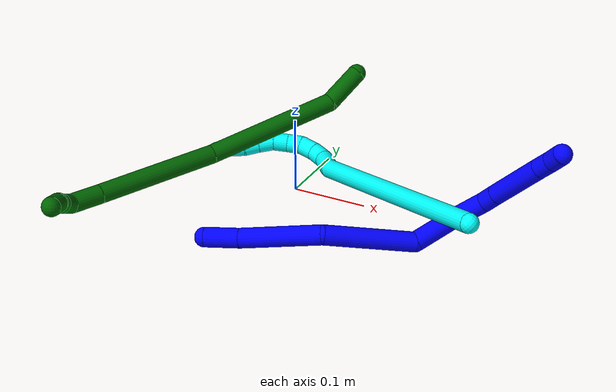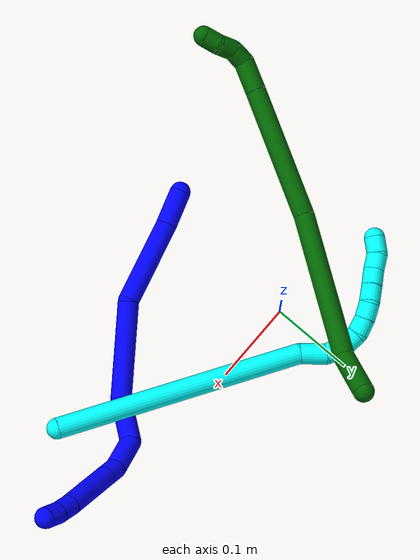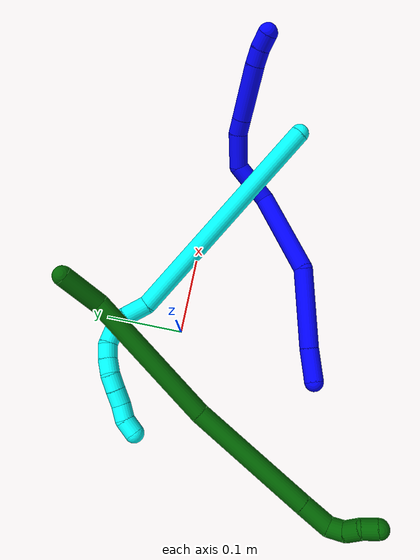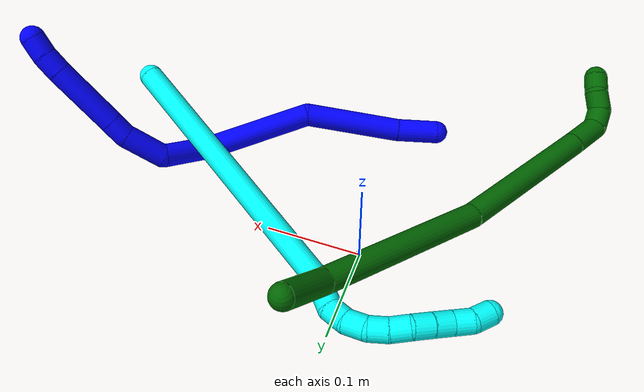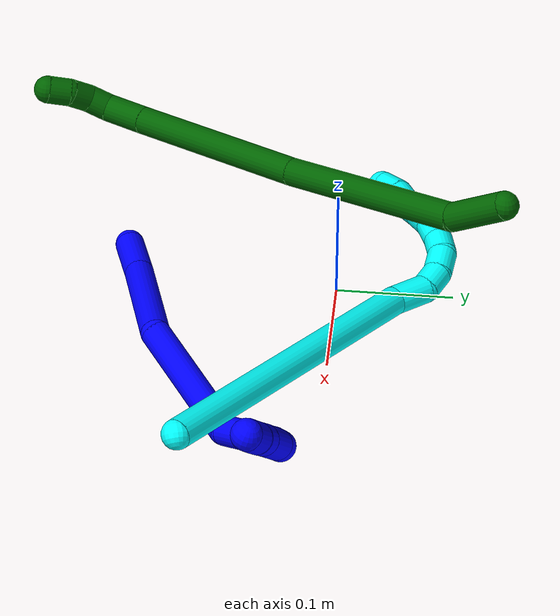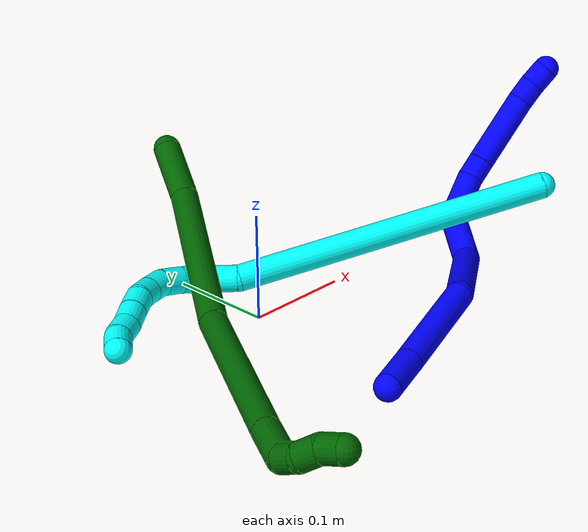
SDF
<sdf version="1.7">
 <world name="default">
  <model name="photoneo_s_sensor">
   <static>1</static>
   <pose>0 0 2 1.57079 1.57079 3.14159</pose>
   <link name="link">
    <inertial><mass>0.1</mass></inertial>
    <sensor name="sensor" type="depth">
     <update_rate>30</update_rate>
     <camera>
      <horizontal_fov>1.22</horizontal_fov>
      <image><width>1920</width><height>1200</height><format>B8G8R8</format></image>
      <clip><near>0.1</near><far>4</far></clip>
      <depth_camera><output>points</output></depth_camera>
     </camera>
     <plugin name="camera_plugin" filename="libgazebo_ros_depth_camera.so">
      <baseline>0.2</baseline>
      <alwaysOn>1</alwaysOn>
      <updateRate>0.0</updateRate>
      <cameraName>camera_ir</cameraName>
      <imageTopicName>/camera/color/image_raw</imageTopicName>
      <cameraInfoTopicName>/camera/color/camera_info</cameraInfoTopicName>
      <depthImageTopicName>/camera/depth/image_raw</depthImageTopicName>
      <depthImageCameraInfoTopicName>/camera/depth/camera_info</depthImageCameraInfoTopicName>
      <pointCloudTopicName>/camera/depth/points</pointCloudTopicName>
      <frameName>fr_optical</frameName>
      <pointCloudCutoff>0.1</pointCloudCutoff>
      <pointCloudCutoffMax>2.0</pointCloudCutoffMax>
      <distortionK1>0</distortionK1>
      <distortionK2>0</distortionK2>
      <distortionK3>0</distortionK3>
      <distortionT1>0</distortionT1>
      <distortionT2>0</distortionT2>
      <CxPrime>0</CxPrime>
      <Cx>0</Cx>
      <Cy>0</Cy>
      <focalLength>0</focalLength>
      <hackBaseline>0</hackBaseline>
     </plugin>
    </sensor>
   </link>
  </model>
  <model name="bin">
   <static>1</static>
   <link name="bottom">
    <collision name="collision-bottom">
     <pose>0 0 -0.01 0 -0 0</pose>
     <geometry><box><size>0.8 0.6 0.02</size></box></geometry>
     <surface>
      <friction><ode><mu>100</mu><mu2>100</mu2></ode></friction>
      <contact><collide_bitmask>65535</collide_bitmask></contact>
     </surface>
    </collision>
   </link>
   <link name="west_wall">
    <collision name="collision-west_wall">
     <pose>-0.41 0 0.1 0 -0 0</pose>
     <geometry><box><size>0.02 0.6 0.2</size></box></geometry>
     <surface>
      <friction><ode><mu>100</mu><mu2>100</mu2></ode></friction>
      <contact><collide_bitmask>65535</collide_bitmask></contact>
     </surface>
    </collision>
   </link>
   <link name="east_wall">
    <collision name="collision-east_wall">
     <pose>0.41 0 0.1 0 -0 0</pose>
     <geometry><box><size>0.02 0.6 0.2</size></box></geometry>
     <surface>
      <friction><ode><mu>100</mu><mu2>100</mu2></ode></friction>
      <contact><collide_bitmask>65535</collide_bitmask></contact>
     </surface>
    </collision>
   </link>
   <link name="south_wall">
    <collision name="collision-south_wall">
     <pose>0 -0.31 0.1 0 -0 0</pose>
     <geometry><box><size>0.8 0.02 0.2</size></box></geometry>
     <surface>
      <friction><ode><mu>100</mu><mu2>100</mu2></ode></friction>
      <contact><collide_bitmask>65535</collide_bitmask></contact>
     </surface>
    </collision>
   </link>
   <link name="north_wall">
    <collision name="collision-north_wall">
     <pose>0 0.31 0.1 0 -0 0</pose>
     <geometry><box><size>0.8 0.02 0.2</size></box></geometry>
     <surface>
      <friction><ode><mu>100</mu><mu2>100</mu2></ode></friction>
      <contact><collide_bitmask>65535</collide_bitmask></contact>
     </surface>
    </collision>
   </link>
  </model>
  <model name="1">
   <static>0</static>
   <link name="1">
    <collision name="collision-cylinder-e_1_1_4">
     <pose>-0.00238 0.021508 -0.004459 -1.77522 -0.107921 0.132525</pose>
     <geometry><cylinder><radius>0.0125</radius><length>0.044189</length></cylinder></geometry>
     <surface>
      <friction><ode><mu>1.16</mu><mu2>1.16</mu2><slip1>0</slip1><slip2>0</slip2></ode></friction>
      <contact><ode><kp>1e+06</kp><kd>1</kd><max_vel>0</max_vel><min_depth>0.001</min_depth></ode></contact>
     </surface>
    </collision>
    <visual name="visual-cylinder-e_1_1_4">
     <pose>-0.00238 0.021508 -0.004459 -1.77522 -0.107921 0.132525</pose>
     <geometry><cylinder><radius>0.0125</radius><length>0.044189</length></cylinder></geometry>
     <material><ambient>0 0 1 1</ambient></material>
    </visual>
    <collision name="collision-cylinder-e_2_4_5">
     <pose>-0.014187 0.091891 -0.024054 -1.87111 -0.182208 0.246601</pose>
     <geometry><cylinder><radius>0.0125</radius><length>0.10405</length></cylinder></geometry>
     <surface>
      <friction><ode><mu>1.16</mu><mu2>1.16</mu2><slip1>0</slip1><slip2>0</slip2></ode></friction>
      <contact><ode><kp>1e+06</kp><kd>1</kd><max_vel>0</max_vel><min_depth>0.001</min_depth></ode></contact>
     </surface>
    </collision>
    <visual name="visual-cylinder-e_2_4_5">
     <pose>-0.014187 0.091891 -0.024054 -1.87111 -0.182208 0.246601</pose>
     <geometry><cylinder><radius>0.0125</radius><length>0.10405</length></cylinder></geometry>
     <material><ambient>0 0 1 1</ambient></material>
    </visual>
    <collision name="collision-cylinder-e_3_5_6">
     <pose>-0.009573 0.197122 -0.041988 -1.62042 0.243876 -0.256157</pose>
     <geometry><cylinder><radius>0.0125</radius><length>0.116296</length></cylinder></geometry>
     <surface>
      <friction><ode><mu>1.16</mu><mu2>1.16</mu2><slip1>0</slip1><slip2>0</slip2></ode></friction>
      <contact><ode><kp>1e+06</kp><kd>1</kd><max_vel>0</max_vel><min_depth>0.001</min_depth></ode></contact>
     </surface>
    </collision>
    <visual name="visual-cylinder-e_3_5_6">
     <pose>-0.009573 0.197122 -0.041988 -1.62042 0.243876 -0.256157</pose>
     <geometry><cylinder><radius>0.0125</radius><length>0.116296</length></cylinder></geometry>
     <material><ambient>0 0 1 1</ambient></material>
    </visual>
    <collision name="collision-cylinder-e_4_6_7">
     <pose>0.015241 0.274272 -0.061115 -2.23649 0.386972 -0.766164</pose>
     <geometry><cylinder><radius>0.0125</radius><length>0.057095</length></cylinder></geometry>
     <surface>
      <friction><ode><mu>1.16</mu><mu2>1.16</mu2><slip1>0</slip1><slip2>0</slip2></ode></friction>
      <contact><ode><kp>1e+06</kp><kd>1</kd><max_vel>0</max_vel><min_depth>0.001</min_depth></ode></contact>
     </surface>
    </collision>
    <visual name="visual-cylinder-e_4_6_7">
     <pose>0.015241 0.274272 -0.061115 -2.23649 0.386972 -0.766164</pose>
     <geometry><cylinder><radius>0.0125</radius><length>0.057095</length></cylinder></geometry>
     <material><ambient>0 0 1 1</ambient></material>
    </visual>
    <collision name="collision-cylinder-e_5_7_8">
     <pose>0.019731 0.310291 -0.092997 -2.36685 -0.281018 0.667428</pose>
     <geometry><cylinder><radius>0.0125</radius><length>0.045312</length></cylinder></geometry>
     <surface>
      <friction><ode><mu>1.16</mu><mu2>1.16</mu2><slip1>0</slip1><slip2>0</slip2></ode></friction>
      <contact><ode><kp>1e+06</kp><kd>1</kd><max_vel>0</max_vel><min_depth>0.001</min_depth></ode></contact>
     </surface>
    </collision>
    <visual name="visual-cylinder-e_5_7_8">
     <pose>0.019731 0.310291 -0.092997 -2.36685 -0.281018 0.667428</pose>
     <geometry><cylinder><radius>0.0125</radius><length>0.045312</length></cylinder></geometry>
     <material><ambient>0 0 1 1</ambient></material>
    </visual>
    <collision name="collision-cylinder-e_6_8_9">
     <pose>0.008149 0.33067 -0.115786 -2.52278 -0.537964 1.42322</pose>
     <geometry><cylinder><radius>0.0125</radius><length>0.020685</length></cylinder></geometry>
     <surface>
      <friction><ode><mu>1.16</mu><mu2>1.16</mu2><slip1>0</slip1><slip2>0</slip2></ode></friction>
      <contact><ode><kp>1e+06</kp><kd>1</kd><max_vel>0</max_vel><min_depth>0.001</min_depth></ode></contact>
     </surface>
    </collision>
    <visual name="visual-cylinder-e_6_8_9">
     <pose>0.008149 0.33067 -0.115786 -2.52278 -0.537964 1.42322</pose>
     <geometry><cylinder><radius>0.0125</radius><length>0.020685</length></cylinder></geometry>
     <material><ambient>0 0 1 1</ambient></material>
    </visual>
    <collision name="collision-cylinder-e_7_9_10">
     <pose>-0.01538 0.354016 -0.147568 -2.50375 -0.537934 1.39121</pose>
     <geometry><cylinder><radius>0.0125</radius><length>0.07116</length></cylinder></geometry>
     <surface>
      <friction><ode><mu>1.16</mu><mu2>1.16</mu2><slip1>0</slip1><slip2>0</slip2></ode></friction>
      <contact><ode><kp>1e+06</kp><kd>1</kd><max_vel>0</max_vel><min_depth>0.001</min_depth></ode></contact>
     </surface>
    </collision>
    <visual name="visual-cylinder-e_7_9_10">
     <pose>-0.01538 0.354016 -0.147568 -2.50375 -0.537934 1.39121</pose>
     <geometry><cylinder><radius>0.0125</radius><length>0.07116</length></cylinder></geometry>
     <material><ambient>0 0 1 1</ambient></material>
    </visual>
    <collision name="collision-cylinder-e_8_10_11">
     <pose>-0.039534 0.377188 -0.178952 -2.51221 -0.611106 1.53935</pose>
     <geometry><cylinder><radius>0.0125</radius><length>0.02065</length></cylinder></geometry>
     <surface>
      <friction><ode><mu>1.16</mu><mu2>1.16</mu2><slip1>0</slip1><slip2>0</slip2></ode></friction>
      <contact><ode><kp>1e+06</kp><kd>1</kd><max_vel>0</max_vel><min_depth>0.001</min_depth></ode></contact>
     </surface>
    </collision>
    <visual name="visual-cylinder-e_8_10_11">
     <pose>-0.039534 0.377188 -0.178952 -2.51221 -0.611106 1.53935</pose>
     <geometry><cylinder><radius>0.0125</radius><length>0.02065</length></cylinder></geometry>
     <material><ambient>0 0 1 1</ambient></material>
    </visual>
    <collision name="collision-cylinder-e_9_11_2">
     <pose>-0.052474 0.385891 -0.192317 -2.62319 -0.750873 1.95713</pose>
     <geometry><cylinder><radius>0.0125</radius><length>0.020564</length></cylinder></geometry>
     <surface>
      <friction><ode><mu>1.16</mu><mu2>1.16</mu2><slip1>0</slip1><slip2>0</slip2></ode></friction>
      <contact><ode><kp>1e+06</kp><kd>1</kd><max_vel>0</max_vel><min_depth>0.001</min_depth></ode></contact>
     </surface>
    </collision>
    <visual name="visual-cylinder-e_9_11_2">
     <pose>-0.052474 0.385891 -0.192317 -2.62319 -0.750873 1.95713</pose>
     <geometry><cylinder><radius>0.0125</radius><length>0.020564</length></cylinder></geometry>
     <material><ambient>0 0 1 1</ambient></material>
    </visual>
    <collision name="collision-sphere-2">
     <pose>-0.059489 0.389616 -0.198847 0 -0 0</pose>
     <geometry><sphere><radius>0.0125</radius></sphere></geometry>
     <surface>
      <friction><ode><mu>1.16</mu><mu2>1.16</mu2><slip1>0</slip1><slip2>0</slip2></ode></friction>
      <contact><ode><kp>1e+06</kp><kd>1</kd><max_vel>0</max_vel><min_depth>0.001</min_depth></ode></contact>
     </surface>
    </collision>
    <visual name="visual-sphere-2">
     <pose>-0.059489 0.389616 -0.198847 0 -0 0</pose>
     <geometry><sphere><radius>0.0125</radius></sphere></geometry>
     <material><ambient>0 0 1 1</ambient></material>
    </visual>
    <collision name="collision-sphere-11">
     <pose>-0.045459 0.382166 -0.185788 0 -0 0</pose>
     <geometry><sphere><radius>0.0125</radius></sphere></geometry>
     <surface>
      <friction><ode><mu>1.16</mu><mu2>1.16</mu2><slip1>0</slip1><slip2>0</slip2></ode></friction>
      <contact><ode><kp>1e+06</kp><kd>1</kd><max_vel>0</max_vel><min_depth>0.001</min_depth></ode></contact>
     </surface>
    </collision>
    <visual name="visual-sphere-11">
     <pose>-0.045459 0.382166 -0.185788 0 -0 0</pose>
     <geometry><sphere><radius>0.0125</radius></sphere></geometry>
     <material><ambient>0 0 1 1</ambient></material>
    </visual>
    <collision name="collision-sphere-10">
     <pose>-0.03361 0.372211 -0.172116 0 -0 0</pose>
     <geometry><sphere><radius>0.0125</radius></sphere></geometry>
     <surface>
      <friction><ode><mu>1.16</mu><mu2>1.16</mu2><slip1>0</slip1><slip2>0</slip2></ode></friction>
      <contact><ode><kp>1e+06</kp><kd>1</kd><max_vel>0</max_vel><min_depth>0.001</min_depth></ode></contact>
     </surface>
    </collision>
    <visual name="visual-sphere-10">
     <pose>-0.03361 0.372211 -0.172116 0 -0 0</pose>
     <geometry><sphere><radius>0.0125</radius></sphere></geometry>
     <material><ambient>0 0 1 1</ambient></material>
    </visual>
    <collision name="collision-sphere-9">
     <pose>0.002849 0.335822 -0.123021 0 -0 0</pose>
     <geometry><sphere><radius>0.0125</radius></sphere></geometry>
     <surface>
      <friction><ode><mu>1.16</mu><mu2>1.16</mu2><slip1>0</slip1><slip2>0</slip2></ode></friction>
      <contact><ode><kp>1e+06</kp><kd>1</kd><max_vel>0</max_vel><min_depth>0.001</min_depth></ode></contact>
     </surface>
    </collision>
    <visual name="visual-sphere-9">
     <pose>0.002849 0.335822 -0.123021 0 -0 0</pose>
     <geometry><sphere><radius>0.0125</radius></sphere></geometry>
     <material><ambient>0 0 1 1</ambient></material>
    </visual>
    <collision name="collision-sphere-4">
     <pose>-0.00476 0.043017 -0.008918 0 -0 0</pose>
     <geometry><sphere><radius>0.0125</radius></sphere></geometry>
     <surface>
      <friction><ode><mu>1.16</mu><mu2>1.16</mu2><slip1>0</slip1><slip2>0</slip2></ode></friction>
      <contact><ode><kp>1e+06</kp><kd>1</kd><max_vel>0</max_vel><min_depth>0.001</min_depth></ode></contact>
     </surface>
    </collision>
    <visual name="visual-sphere-4">
     <pose>-0.00476 0.043017 -0.008918 0 -0 0</pose>
     <geometry><sphere><radius>0.0125</radius></sphere></geometry>
     <material><ambient>0 0 1 1</ambient></material>
    </visual>
    <collision name="collision-sphere-1">
     <geometry><sphere><radius>0.0125</radius></sphere></geometry>
     <surface>
      <friction><ode><mu>1.16</mu><mu2>1.16</mu2><slip1>0</slip1><slip2>0</slip2></ode></friction>
      <contact><ode><kp>1e+06</kp><kd>1</kd><max_vel>0</max_vel><min_depth>0.001</min_depth></ode></contact>
     </surface>
    </collision>
    <visual name="visual-sphere-1">
     <geometry><sphere><radius>0.0125</radius></sphere></geometry>
     <material><ambient>0 0 1 1</ambient></material>
    </visual>
    <collision name="collision-sphere-8">
     <pose>0.013448 0.325518 -0.108552 0 -0 0</pose>
     <geometry><sphere><radius>0.0125</radius></sphere></geometry>
     <surface>
      <friction><ode><mu>1.16</mu><mu2>1.16</mu2><slip1>0</slip1><slip2>0</slip2></ode></friction>
      <contact><ode><kp>1e+06</kp><kd>1</kd><max_vel>0</max_vel><min_depth>0.001</min_depth></ode></contact>
     </surface>
    </collision>
    <visual name="visual-sphere-8">
     <pose>0.013448 0.325518 -0.108552 0 -0 0</pose>
     <geometry><sphere><radius>0.0125</radius></sphere></geometry>
     <material><ambient>0 0 1 1</ambient></material>
    </visual>
    <collision name="collision-sphere-5">
     <pose>-0.023614 0.140764 -0.039189 0 -0 0</pose>
     <geometry><sphere><radius>0.0125</radius></sphere></geometry>
     <surface>
      <friction><ode><mu>1.16</mu><mu2>1.16</mu2><slip1>0</slip1><slip2>0</slip2></ode></friction>
      <contact><ode><kp>1e+06</kp><kd>1</kd><max_vel>0</max_vel><min_depth>0.001</min_depth></ode></contact>
     </surface>
    </collision>
    <visual name="visual-sphere-5">
     <pose>-0.023614 0.140764 -0.039189 0 -0 0</pose>
     <geometry><sphere><radius>0.0125</radius></sphere></geometry>
     <material><ambient>0 0 1 1</ambient></material>
    </visual>
    <collision name="collision-sphere-6">
     <pose>0.004468 0.25348 -0.044787 0 -0 0</pose>
     <geometry><sphere><radius>0.0125</radius></sphere></geometry>
     <surface>
      <friction><ode><mu>1.16</mu><mu2>1.16</mu2><slip1>0</slip1><slip2>0</slip2></ode></friction>
      <contact><ode><kp>1e+06</kp><kd>1</kd><max_vel>0</max_vel><min_depth>0.001</min_depth></ode></contact>
     </surface>
    </collision>
    <visual name="visual-sphere-6">
     <pose>0.004468 0.25348 -0.044787 0 -0 0</pose>
     <geometry><sphere><radius>0.0125</radius></sphere></geometry>
     <material><ambient>0 0 1 1</ambient></material>
    </visual>
    <collision name="collision-sphere-7">
     <pose>0.026015 0.295064 -0.077442 0 -0 0</pose>
     <geometry><sphere><radius>0.0125</radius></sphere></geometry>
     <surface>
      <friction><ode><mu>1.16</mu><mu2>1.16</mu2><slip1>0</slip1><slip2>0</slip2></ode></friction>
      <contact><ode><kp>1e+06</kp><kd>1</kd><max_vel>0</max_vel><min_depth>0.001</min_depth></ode></contact>
     </surface>
    </collision>
    <visual name="visual-sphere-7">
     <pose>0.026015 0.295064 -0.077442 0 -0 0</pose>
     <geometry><sphere><radius>0.0125</radius></sphere></geometry>
     <material><ambient>0 0 1 1</ambient></material>
    </visual>
    <inertial>
     <pose>-0.007503 0.221823 -0.071665 0 -0 0</pose>
     <mass>0.5</mass>
     <inertia>
      <ixx>0.000266</ixx>
      <ixy>0</ixy>
      <ixz>0</ixz>
      <iyy>2.2e-05</iyy>
      <iyz>0</iyz>
      <izz>-0.000284</izz>
     </inertia>
    </inertial>
   </link>
   <pose>-0.030825 -0.183024 0.01248 -2.96751 0.236803 1.98887</pose>
  </model>
  <model name="3">
   <static>0</static>
   <link name="3">
    <collision name="collision-cylinder-e_1_1_4">
     <pose>-0.118522 0.076744 0.053613 -0.961011 -0.902266 0.494704</pose>
     <geometry><cylinder><radius>0.0125</radius><length>0.302068</length></cylinder></geometry>
     <surface>
      <friction><ode><mu>1.16</mu><mu2>1.16</mu2><slip1>0</slip1><slip2>0</slip2></ode></friction>
      <contact><ode><kp>1e+06</kp><kd>1</kd><max_vel>0</max_vel><min_depth>0.001</min_depth></ode></contact>
     </surface>
    </collision>
    <visual name="visual-cylinder-e_1_1_4">
     <pose>-0.118522 0.076744 0.053613 -0.961011 -0.902266 0.494704</pose>
     <geometry><cylinder><radius>0.0125</radius><length>0.302068</length></cylinder></geometry>
     <material><ambient>0.003922 1 0.996078 1</ambient></material>
    </visual>
    <collision name="collision-cylinder-e_2_4_5">
     <pose>-0.246491 0.166275 0.111318 -1.26112 -0.613191 0.454213</pose>
     <geometry><cylinder><radius>0.0125</radius><length>0.032833</length></cylinder></geometry>
     <surface>
      <friction><ode><mu>1.16</mu><mu2>1.16</mu2><slip1>0</slip1><slip2>0</slip2></ode></friction>
      <contact><ode><kp>1e+06</kp><kd>1</kd><max_vel>0</max_vel><min_depth>0.001</min_depth></ode></contact>
     </surface>
    </collision>
    <visual name="visual-cylinder-e_2_4_5">
     <pose>-0.246491 0.166275 0.111318 -1.26112 -0.613191 0.454213</pose>
     <geometry><cylinder><radius>0.0125</radius><length>0.032833</length></cylinder></geometry>
     <material><ambient>0.003922 1 0.996078 1</ambient></material>
    </visual>
    <collision name="collision-cylinder-e_3_5_6">
     <pose>-0.262222 0.184683 0.12208 -0.70025 -0.624256 0.234581</pose>
     <geometry><cylinder><radius>0.0125</radius><length>0.021503</length></cylinder></geometry>
     <surface>
      <friction><ode><mu>1.16</mu><mu2>1.16</mu2><slip1>0</slip1><slip2>0</slip2></ode></friction>
      <contact><ode><kp>1e+06</kp><kd>1</kd><max_vel>0</max_vel><min_depth>0.001</min_depth></ode></contact>
     </surface>
    </collision>
    <visual name="visual-cylinder-e_3_5_6">
     <pose>-0.262222 0.184683 0.12208 -0.70025 -0.624256 0.234581</pose>
     <geometry><cylinder><radius>0.0125</radius><length>0.021503</length></cylinder></geometry>
     <material><ambient>0.003922 1 0.996078 1</ambient></material>
    </visual>
    <collision name="collision-cylinder-e_4_6_7">
     <pose>-0.274776 0.193054 0.137496 -0.3045 -0.599833 0.094828</pose>
     <geometry><cylinder><radius>0.0125</radius><length>0.022211</length></cylinder></geometry>
     <surface>
      <friction><ode><mu>1.16</mu><mu2>1.16</mu2><slip1>0</slip1><slip2>0</slip2></ode></friction>
      <contact><ode><kp>1e+06</kp><kd>1</kd><max_vel>0</max_vel><min_depth>0.001</min_depth></ode></contact>
     </surface>
    </collision>
    <visual name="visual-cylinder-e_4_6_7">
     <pose>-0.274776 0.193054 0.137496 -0.3045 -0.599833 0.094828</pose>
     <geometry><cylinder><radius>0.0125</radius><length>0.022211</length></cylinder></geometry>
     <material><ambient>0.003922 1 0.996078 1</ambient></material>
    </visual>
    <collision name="collision-cylinder-e_5_7_8">
     <pose>-0.287193 0.194347 0.154006 0.185228 -0.661332 -0.063744</pose>
     <geometry><cylinder><radius>0.0125</radius><length>0.02002</length></cylinder></geometry>
     <surface>
      <friction><ode><mu>1.16</mu><mu2>1.16</mu2><slip1>0</slip1><slip2>0</slip2></ode></friction>
      <contact><ode><kp>1e+06</kp><kd>1</kd><max_vel>0</max_vel><min_depth>0.001</min_depth></ode></contact>
     </surface>
    </collision>
    <visual name="visual-cylinder-e_5_7_8">
     <pose>-0.287193 0.194347 0.154006 0.185228 -0.661332 -0.063744</pose>
     <geometry><cylinder><radius>0.0125</radius><length>0.02002</length></cylinder></geometry>
     <material><ambient>0.003922 1 0.996078 1</ambient></material>
    </visual>
    <collision name="collision-cylinder-e_6_8_9">
     <pose>-0.298414 0.189932 0.170007 0.34501 -0.525392 -0.09364</pose>
     <geometry><cylinder><radius>0.0125</radius><length>0.020232</length></cylinder></geometry>
     <surface>
      <friction><ode><mu>1.16</mu><mu2>1.16</mu2><slip1>0</slip1><slip2>0</slip2></ode></friction>
      <contact><ode><kp>1e+06</kp><kd>1</kd><max_vel>0</max_vel><min_depth>0.001</min_depth></ode></contact>
     </surface>
    </collision>
    <visual name="visual-cylinder-e_6_8_9">
     <pose>-0.298414 0.189932 0.170007 0.34501 -0.525392 -0.09364</pose>
     <geometry><cylinder><radius>0.0125</radius><length>0.020232</length></cylinder></geometry>
     <material><ambient>0.003922 1 0.996078 1</ambient></material>
    </visual>
    <collision name="collision-cylinder-e_7_9_10">
     <pose>-0.309977 0.182113 0.184608 0.652043 -0.680915 -0.238399</pose>
     <geometry><cylinder><radius>0.0125</radius><length>0.020615</length></cylinder></geometry>
     <surface>
      <friction><ode><mu>1.16</mu><mu2>1.16</mu2><slip1>0</slip1><slip2>0</slip2></ode></friction>
      <contact><ode><kp>1e+06</kp><kd>1</kd><max_vel>0</max_vel><min_depth>0.001</min_depth></ode></contact>
     </surface>
    </collision>
    <visual name="visual-cylinder-e_7_9_10">
     <pose>-0.309977 0.182113 0.184608 0.652043 -0.680915 -0.238399</pose>
     <geometry><cylinder><radius>0.0125</radius><length>0.020615</length></cylinder></geometry>
     <material><ambient>0.003922 1 0.996078 1</ambient></material>
    </visual>
    <collision name="collision-cylinder-e_8_10_11">
     <pose>-0.323011 0.172232 0.1968 0.711326 -0.70518 -0.271686</pose>
     <geometry><cylinder><radius>0.0125</radius><length>0.020198</length></cylinder></geometry>
     <surface>
      <friction><ode><mu>1.16</mu><mu2>1.16</mu2><slip1>0</slip1><slip2>0</slip2></ode></friction>
      <contact><ode><kp>1e+06</kp><kd>1</kd><max_vel>0</max_vel><min_depth>0.001</min_depth></ode></contact>
     </surface>
    </collision>
    <visual name="visual-cylinder-e_8_10_11">
     <pose>-0.323011 0.172232 0.1968 0.711326 -0.70518 -0.271686</pose>
     <geometry><cylinder><radius>0.0125</radius><length>0.020198</length></cylinder></geometry>
     <material><ambient>0.003922 1 0.996078 1</ambient></material>
    </visual>
    <collision name="collision-cylinder-e_9_11_12">
     <pose>-0.335452 0.163322 0.209708 0.502206 -0.630249 -0.166855</pose>
     <geometry><cylinder><radius>0.0125</radius><length>0.020006</length></cylinder></geometry>
     <surface>
      <friction><ode><mu>1.16</mu><mu2>1.16</mu2><slip1>0</slip1><slip2>0</slip2></ode></friction>
      <contact><ode><kp>1e+06</kp><kd>1</kd><max_vel>0</max_vel><min_depth>0.001</min_depth></ode></contact>
     </surface>
    </collision>
    <visual name="visual-cylinder-e_9_11_12">
     <pose>-0.335452 0.163322 0.209708 0.502206 -0.630249 -0.166855</pose>
     <geometry><cylinder><radius>0.0125</radius><length>0.020006</length></cylinder></geometry>
     <material><ambient>0.003922 1 0.996078 1</ambient></material>
    </visual>
    <collision name="collision-cylinder-e_10_12_2">
     <pose>-0.345791 0.152358 0.222568 0.886039 -0.452849 -0.21775</pose>
     <geometry><cylinder><radius>0.0125</radius><length>0.020313</length></cylinder></geometry>
     <surface>
      <friction><ode><mu>1.16</mu><mu2>1.16</mu2><slip1>0</slip1><slip2>0</slip2></ode></friction>
      <contact><ode><kp>1e+06</kp><kd>1</kd><max_vel>0</max_vel><min_depth>0.001</min_depth></ode></contact>
     </surface>
    </collision>
    <visual name="visual-cylinder-e_10_12_2">
     <pose>-0.345791 0.152358 0.222568 0.886039 -0.452849 -0.21775</pose>
     <geometry><cylinder><radius>0.0125</radius><length>0.020313</length></cylinder></geometry>
     <material><ambient>0.003922 1 0.996078 1</ambient></material>
    </visual>
    <collision name="collision-sphere-2">
     <pose>-0.350235 0.145284 0.228344 0 -0 0</pose>
     <geometry><sphere><radius>0.0125</radius></sphere></geometry>
     <surface>
      <friction><ode><mu>1.16</mu><mu2>1.16</mu2><slip1>0</slip1><slip2>0</slip2></ode></friction>
      <contact><ode><kp>1e+06</kp><kd>1</kd><max_vel>0</max_vel><min_depth>0.001</min_depth></ode></contact>
     </surface>
    </collision>
    <visual name="visual-sphere-2">
     <pose>-0.350235 0.145284 0.228344 0 -0 0</pose>
     <geometry><sphere><radius>0.0125</radius></sphere></geometry>
     <material><ambient>0.003922 1 0.996078 1</ambient></material>
    </visual>
    <collision name="collision-sphere-12">
     <pose>-0.341347 0.159432 0.216791 0 -0 0</pose>
     <geometry><sphere><radius>0.0125</radius></sphere></geometry>
     <surface>
      <friction><ode><mu>1.16</mu><mu2>1.16</mu2><slip1>0</slip1><slip2>0</slip2></ode></friction>
      <contact><ode><kp>1e+06</kp><kd>1</kd><max_vel>0</max_vel><min_depth>0.001</min_depth></ode></contact>
     </surface>
    </collision>
    <visual name="visual-sphere-12">
     <pose>-0.341347 0.159432 0.216791 0 -0 0</pose>
     <geometry><sphere><radius>0.0125</radius></sphere></geometry>
     <material><ambient>0.003922 1 0.996078 1</ambient></material>
    </visual>
    <collision name="collision-sphere-11">
     <pose>-0.329557 0.167212 0.202625 0 -0 0</pose>
     <geometry><sphere><radius>0.0125</radius></sphere></geometry>
     <surface>
      <friction><ode><mu>1.16</mu><mu2>1.16</mu2><slip1>0</slip1><slip2>0</slip2></ode></friction>
      <contact><ode><kp>1e+06</kp><kd>1</kd><max_vel>0</max_vel><min_depth>0.001</min_depth></ode></contact>
     </surface>
    </collision>
    <visual name="visual-sphere-11">
     <pose>-0.329557 0.167212 0.202625 0 -0 0</pose>
     <geometry><sphere><radius>0.0125</radius></sphere></geometry>
     <material><ambient>0.003922 1 0.996078 1</ambient></material>
    </visual>
    <collision name="collision-sphere-10">
     <pose>-0.316465 0.177253 0.190974 0 -0 0</pose>
     <geometry><sphere><radius>0.0125</radius></sphere></geometry>
     <surface>
      <friction><ode><mu>1.16</mu><mu2>1.16</mu2><slip1>0</slip1><slip2>0</slip2></ode></friction>
      <contact><ode><kp>1e+06</kp><kd>1</kd><max_vel>0</max_vel><min_depth>0.001</min_depth></ode></contact>
     </surface>
    </collision>
    <visual name="visual-sphere-10">
     <pose>-0.316465 0.177253 0.190974 0 -0 0</pose>
     <geometry><sphere><radius>0.0125</radius></sphere></geometry>
     <material><ambient>0.003922 1 0.996078 1</ambient></material>
    </visual>
    <collision name="collision-sphere-9">
     <pose>-0.303488 0.186973 0.178242 0 -0 0</pose>
     <geometry><sphere><radius>0.0125</radius></sphere></geometry>
     <surface>
      <friction><ode><mu>1.16</mu><mu2>1.16</mu2><slip1>0</slip1><slip2>0</slip2></ode></friction>
      <contact><ode><kp>1e+06</kp><kd>1</kd><max_vel>0</max_vel><min_depth>0.001</min_depth></ode></contact>
     </surface>
    </collision>
    <visual name="visual-sphere-9">
     <pose>-0.303488 0.186973 0.178242 0 -0 0</pose>
     <geometry><sphere><radius>0.0125</radius></sphere></geometry>
     <material><ambient>0.003922 1 0.996078 1</ambient></material>
    </visual>
    <collision name="collision-sphere-4">
     <pose>-0.237043 0.153488 0.107226 0 -0 0</pose>
     <geometry><sphere><radius>0.0125</radius></sphere></geometry>
     <surface>
      <friction><ode><mu>1.16</mu><mu2>1.16</mu2><slip1>0</slip1><slip2>0</slip2></ode></friction>
      <contact><ode><kp>1e+06</kp><kd>1</kd><max_vel>0</max_vel><min_depth>0.001</min_depth></ode></contact>
     </surface>
    </collision>
    <visual name="visual-sphere-4">
     <pose>-0.237043 0.153488 0.107226 0 -0 0</pose>
     <geometry><sphere><radius>0.0125</radius></sphere></geometry>
     <material><ambient>0.003922 1 0.996078 1</ambient></material>
    </visual>
    <collision name="collision-sphere-1">
     <geometry><sphere><radius>0.0125</radius></sphere></geometry>
     <surface>
      <friction><ode><mu>1.16</mu><mu2>1.16</mu2><slip1>0</slip1><slip2>0</slip2></ode></friction>
      <contact><ode><kp>1e+06</kp><kd>1</kd><max_vel>0</max_vel><min_depth>0.001</min_depth></ode></contact>
     </surface>
    </collision>
    <visual name="visual-sphere-1">
     <geometry><sphere><radius>0.0125</radius></sphere></geometry>
     <material><ambient>0.003922 1 0.996078 1</ambient></material>
    </visual>
    <collision name="collision-sphere-8">
     <pose>-0.293341 0.192892 0.161771 0 -0 0</pose>
     <geometry><sphere><radius>0.0125</radius></sphere></geometry>
     <surface>
      <friction><ode><mu>1.16</mu><mu2>1.16</mu2><slip1>0</slip1><slip2>0</slip2></ode></friction>
      <contact><ode><kp>1e+06</kp><kd>1</kd><max_vel>0</max_vel><min_depth>0.001</min_depth></ode></contact>
     </surface>
    </collision>
    <visual name="visual-sphere-8">
     <pose>-0.293341 0.192892 0.161771 0 -0 0</pose>
     <geometry><sphere><radius>0.0125</radius></sphere></geometry>
     <material><ambient>0.003922 1 0.996078 1</ambient></material>
    </visual>
    <collision name="collision-sphere-5">
     <pose>-0.255938 0.179062 0.115409 0 -0 0</pose>
     <geometry><sphere><radius>0.0125</radius></sphere></geometry>
     <surface>
      <friction><ode><mu>1.16</mu><mu2>1.16</mu2><slip1>0</slip1><slip2>0</slip2></ode></friction>
      <contact><ode><kp>1e+06</kp><kd>1</kd><max_vel>0</max_vel><min_depth>0.001</min_depth></ode></contact>
     </surface>
    </collision>
    <visual name="visual-sphere-5">
     <pose>-0.255938 0.179062 0.115409 0 -0 0</pose>
     <geometry><sphere><radius>0.0125</radius></sphere></geometry>
     <material><ambient>0.003922 1 0.996078 1</ambient></material>
    </visual>
    <collision name="collision-sphere-6">
     <pose>-0.268507 0.190305 0.128751 0 -0 0</pose>
     <geometry><sphere><radius>0.0125</radius></sphere></geometry>
     <surface>
      <friction><ode><mu>1.16</mu><mu2>1.16</mu2><slip1>0</slip1><slip2>0</slip2></ode></friction>
      <contact><ode><kp>1e+06</kp><kd>1</kd><max_vel>0</max_vel><min_depth>0.001</min_depth></ode></contact>
     </surface>
    </collision>
    <visual name="visual-sphere-6">
     <pose>-0.268507 0.190305 0.128751 0 -0 0</pose>
     <geometry><sphere><radius>0.0125</radius></sphere></geometry>
     <material><ambient>0.003922 1 0.996078 1</ambient></material>
    </visual>
    <collision name="collision-sphere-7">
     <pose>-0.281045 0.195802 0.146242 0 -0 0</pose>
     <geometry><sphere><radius>0.0125</radius></sphere></geometry>
     <surface>
      <friction><ode><mu>1.16</mu><mu2>1.16</mu2><slip1>0</slip1><slip2>0</slip2></ode></friction>
      <contact><ode><kp>1e+06</kp><kd>1</kd><max_vel>0</max_vel><min_depth>0.001</min_depth></ode></contact>
     </surface>
    </collision>
    <visual name="visual-sphere-7">
     <pose>-0.281045 0.195802 0.146242 0 -0 0</pose>
     <geometry><sphere><radius>0.0125</radius></sphere></geometry>
     <material><ambient>0.003922 1 0.996078 1</ambient></material>
    </visual>
    <inertial>
     <pose>-0.188146 0.116458 0.097097 0 -0 0</pose>
     <mass>0.5</mass>
     <inertia>
      <ixx>0.001925</ixx>
      <ixy>0</ixy>
      <ixz>0</ixz>
      <iyy>0.002573</iyy>
      <iyz>0</iyz>
      <izz>0.000665</izz>
     </inertia>
    </inertial>
   </link>
   <pose>0.278653 -0.102444 0.071909 0.35483 -0.784756 -0.175706</pose>
  </model>
  <model name="6">
   <static>0</static>
   <link name="6">
    <collision name="collision-cylinder-e_1_1_4">
     <pose>-0.00944 -0.020937 -0.016018 2.22386 -0.34387 -0.676002</pose>
     <geometry><cylinder><radius>0.0125</radius><length>0.056002</length></cylinder></geometry>
     <surface>
      <friction><ode><mu>1.16</mu><mu2>1.16</mu2><slip1>0</slip1><slip2>0</slip2></ode></friction>
      <contact><ode><kp>1e+06</kp><kd>1</kd><max_vel>0</max_vel><min_depth>0.001</min_depth></ode></contact>
     </surface>
    </collision>
    <visual name="visual-cylinder-e_1_1_4">
     <pose>-0.00944 -0.020937 -0.016018 2.22386 -0.34387 -0.676002</pose>
     <geometry><cylinder><radius>0.0125</radius><length>0.056002</length></cylinder></geometry>
     <material><ambient>0 0.392157 0.003922 1</ambient></material>
    </visual>
    <collision name="collision-cylinder-e_2_4_5">
     <pose>-0.069768 -0.112598 -0.055068 1.88563 -0.600019 -0.805574</pose>
     <geometry><cylinder><radius>0.0125</radius><length>0.180244</length></cylinder></geometry>
     <surface>
      <friction><ode><mu>1.16</mu><mu2>1.16</mu2><slip1>0</slip1><slip2>0</slip2></ode></friction>
      <contact><ode><kp>1e+06</kp><kd>1</kd><max_vel>0</max_vel><min_depth>0.001</min_depth></ode></contact>
     </surface>
    </collision>
    <visual name="visual-cylinder-e_2_4_5">
     <pose>-0.069768 -0.112598 -0.055068 1.88563 -0.600019 -0.805574</pose>
     <geometry><cylinder><radius>0.0125</radius><length>0.180244</length></cylinder></geometry>
     <material><ambient>0 0.392157 0.003922 1</ambient></material>
    </visual>
    <collision name="collision-cylinder-e_3_5_6">
     <pose>-0.160761 -0.253674 -0.087357 1.70161 -0.514431 -0.58276</pose>
     <geometry><cylinder><radius>0.0125</radius><length>0.163015</length></cylinder></geometry>
     <surface>
      <friction><ode><mu>1.16</mu><mu2>1.16</mu2><slip1>0</slip1><slip2>0</slip2></ode></friction>
      <contact><ode><kp>1e+06</kp><kd>1</kd><max_vel>0</max_vel><min_depth>0.001</min_depth></ode></contact>
     </surface>
    </collision>
    <visual name="visual-cylinder-e_3_5_6">
     <pose>-0.160761 -0.253674 -0.087357 1.70161 -0.514431 -0.58276</pose>
     <geometry><cylinder><radius>0.0125</radius><length>0.163015</length></cylinder></geometry>
     <material><ambient>0 0.392157 0.003922 1</ambient></material>
    </visual>
    <collision name="collision-cylinder-e_4_6_7">
     <pose>-0.210394 -0.341317 -0.098331 1.66987 -0.50156 -0.551391</pose>
     <geometry><cylinder><radius>0.0125</radius><length>0.039634</length></cylinder></geometry>
     <surface>
      <friction><ode><mu>1.16</mu><mu2>1.16</mu2><slip1>0</slip1><slip2>0</slip2></ode></friction>
      <contact><ode><kp>1e+06</kp><kd>1</kd><max_vel>0</max_vel><min_depth>0.001</min_depth></ode></contact>
     </surface>
    </collision>
    <visual name="visual-cylinder-e_4_6_7">
     <pose>-0.210394 -0.341317 -0.098331 1.66987 -0.50156 -0.551391</pose>
     <geometry><cylinder><radius>0.0125</radius><length>0.039634</length></cylinder></geometry>
     <material><ambient>0 0.392157 0.003922 1</ambient></material>
    </visual>
    <collision name="collision-cylinder-e_5_7_8">
     <pose>-0.220407 -0.368074 -0.09596 1.16294 -0.046942 -0.030857</pose>
     <geometry><cylinder><radius>0.0125</radius><length>0.020646</length></cylinder></geometry>
     <surface>
      <friction><ode><mu>1.16</mu><mu2>1.16</mu2><slip1>0</slip1><slip2>0</slip2></ode></friction>
      <contact><ode><kp>1e+06</kp><kd>1</kd><max_vel>0</max_vel><min_depth>0.001</min_depth></ode></contact>
     </surface>
    </collision>
    <visual name="visual-cylinder-e_5_7_8">
     <pose>-0.220407 -0.368074 -0.09596 1.16294 -0.046942 -0.030857</pose>
     <geometry><cylinder><radius>0.0125</radius><length>0.020646</length></cylinder></geometry>
     <material><ambient>0 0.392157 0.003922 1</ambient></material>
    </visual>
    <collision name="collision-cylinder-e_6_8_9">
     <pose>-0.217146 -0.385511 -0.086756 1.00033 0.37653 0.207499</pose>
     <geometry><cylinder><radius>0.0125</radius><length>0.020369</length></cylinder></geometry>
     <surface>
      <friction><ode><mu>1.16</mu><mu2>1.16</mu2><slip1>0</slip1><slip2>0</slip2></ode></friction>
      <contact><ode><kp>1e+06</kp><kd>1</kd><max_vel>0</max_vel><min_depth>0.001</min_depth></ode></contact>
     </surface>
    </collision>
    <visual name="visual-cylinder-e_6_8_9">
     <pose>-0.217146 -0.385511 -0.086756 1.00033 0.37653 0.207499</pose>
     <geometry><cylinder><radius>0.0125</radius><length>0.020369</length></cylinder></geometry>
     <material><ambient>0 0.392157 0.003922 1</ambient></material>
    </visual>
    <collision name="collision-cylinder-e_7_9_2">
     <pose>-0.211282 -0.403057 -0.079464 1.34722 0.212637 0.169947</pose>
     <geometry><cylinder><radius>0.0125</radius><length>0.02009</length></cylinder></geometry>
     <surface>
      <friction><ode><mu>1.16</mu><mu2>1.16</mu2><slip1>0</slip1><slip2>0</slip2></ode></friction>
      <contact><ode><kp>1e+06</kp><kd>1</kd><max_vel>0</max_vel><min_depth>0.001</min_depth></ode></contact>
     </surface>
    </collision>
    <visual name="visual-cylinder-e_7_9_2">
     <pose>-0.211282 -0.403057 -0.079464 1.34722 0.212637 0.169947</pose>
     <geometry><cylinder><radius>0.0125</radius><length>0.02009</length></cylinder></geometry>
     <material><ambient>0 0.392157 0.003922 1</ambient></material>
    </visual>
    <collision name="collision-sphere-2">
     <pose>-0.209162 -0.412631 -0.077287 0 -0 0</pose>
     <geometry><sphere><radius>0.0125</radius></sphere></geometry>
     <surface>
      <friction><ode><mu>1.16</mu><mu2>1.16</mu2><slip1>0</slip1><slip2>0</slip2></ode></friction>
      <contact><ode><kp>1e+06</kp><kd>1</kd><max_vel>0</max_vel><min_depth>0.001</min_depth></ode></contact>
     </surface>
    </collision>
    <visual name="visual-sphere-2">
     <pose>-0.209162 -0.412631 -0.077287 0 -0 0</pose>
     <geometry><sphere><radius>0.0125</radius></sphere></geometry>
     <material><ambient>0 0.392157 0.003922 1</ambient></material>
    </visual>
    <collision name="collision-sphere-9">
     <pose>-0.213401 -0.393482 -0.081641 0 -0 0</pose>
     <geometry><sphere><radius>0.0125</radius></sphere></geometry>
     <surface>
      <friction><ode><mu>1.16</mu><mu2>1.16</mu2><slip1>0</slip1><slip2>0</slip2></ode></friction>
      <contact><ode><kp>1e+06</kp><kd>1</kd><max_vel>0</max_vel><min_depth>0.001</min_depth></ode></contact>
     </surface>
    </collision>
    <visual name="visual-sphere-9">
     <pose>-0.213401 -0.393482 -0.081641 0 -0 0</pose>
     <geometry><sphere><radius>0.0125</radius></sphere></geometry>
     <material><ambient>0 0.392157 0.003922 1</ambient></material>
    </visual>
    <collision name="collision-sphere-4">
     <pose>-0.01888 -0.041874 -0.032036 0 -0 0</pose>
     <geometry><sphere><radius>0.0125</radius></sphere></geometry>
     <surface>
      <friction><ode><mu>1.16</mu><mu2>1.16</mu2><slip1>0</slip1><slip2>0</slip2></ode></friction>
      <contact><ode><kp>1e+06</kp><kd>1</kd><max_vel>0</max_vel><min_depth>0.001</min_depth></ode></contact>
     </surface>
    </collision>
    <visual name="visual-sphere-4">
     <pose>-0.01888 -0.041874 -0.032036 0 -0 0</pose>
     <geometry><sphere><radius>0.0125</radius></sphere></geometry>
     <material><ambient>0 0.392157 0.003922 1</ambient></material>
    </visual>
    <collision name="collision-sphere-1">
     <geometry><sphere><radius>0.0125</radius></sphere></geometry>
     <surface>
      <friction><ode><mu>1.16</mu><mu2>1.16</mu2><slip1>0</slip1><slip2>0</slip2></ode></friction>
      <contact><ode><kp>1e+06</kp><kd>1</kd><max_vel>0</max_vel><min_depth>0.001</min_depth></ode></contact>
     </surface>
    </collision>
    <visual name="visual-sphere-1">
     <geometry><sphere><radius>0.0125</radius></sphere></geometry>
     <material><ambient>0 0.392157 0.003922 1</ambient></material>
    </visual>
    <collision name="collision-sphere-8">
     <pose>-0.220891 -0.37754 -0.09187 0 -0 0</pose>
     <geometry><sphere><radius>0.0125</radius></sphere></geometry>
     <surface>
      <friction><ode><mu>1.16</mu><mu2>1.16</mu2><slip1>0</slip1><slip2>0</slip2></ode></friction>
      <contact><ode><kp>1e+06</kp><kd>1</kd><max_vel>0</max_vel><min_depth>0.001</min_depth></ode></contact>
     </surface>
    </collision>
    <visual name="visual-sphere-8">
     <pose>-0.220891 -0.37754 -0.09187 0 -0 0</pose>
     <geometry><sphere><radius>0.0125</radius></sphere></geometry>
     <material><ambient>0 0.392157 0.003922 1</ambient></material>
    </visual>
    <collision name="collision-sphere-5">
     <pose>-0.120656 -0.183322 -0.078101 0 -0 0</pose>
     <geometry><sphere><radius>0.0125</radius></sphere></geometry>
     <surface>
      <friction><ode><mu>1.16</mu><mu2>1.16</mu2><slip1>0</slip1><slip2>0</slip2></ode></friction>
      <contact><ode><kp>1e+06</kp><kd>1</kd><max_vel>0</max_vel><min_depth>0.001</min_depth></ode></contact>
     </surface>
    </collision>
    <visual name="visual-sphere-5">
     <pose>-0.120656 -0.183322 -0.078101 0 -0 0</pose>
     <geometry><sphere><radius>0.0125</radius></sphere></geometry>
     <material><ambient>0 0.392157 0.003922 1</ambient></material>
    </visual>
    <collision name="collision-sphere-6">
     <pose>-0.200866 -0.324026 -0.096613 0 -0 0</pose>
     <geometry><sphere><radius>0.0125</radius></sphere></geometry>
     <surface>
      <friction><ode><mu>1.16</mu><mu2>1.16</mu2><slip1>0</slip1><slip2>0</slip2></ode></friction>
      <contact><ode><kp>1e+06</kp><kd>1</kd><max_vel>0</max_vel><min_depth>0.001</min_depth></ode></contact>
     </surface>
    </collision>
    <visual name="visual-sphere-6">
     <pose>-0.200866 -0.324026 -0.096613 0 -0 0</pose>
     <geometry><sphere><radius>0.0125</radius></sphere></geometry>
     <material><ambient>0 0.392157 0.003922 1</ambient></material>
    </visual>
    <collision name="collision-sphere-7">
     <pose>-0.219922 -0.358609 -0.10005 0 -0 0</pose>
     <geometry><sphere><radius>0.0125</radius></sphere></geometry>
     <surface>
      <friction><ode><mu>1.16</mu><mu2>1.16</mu2><slip1>0</slip1><slip2>0</slip2></ode></friction>
      <contact><ode><kp>1e+06</kp><kd>1</kd><max_vel>0</max_vel><min_depth>0.001</min_depth></ode></contact>
     </surface>
    </collision>
    <visual name="visual-sphere-7">
     <pose>-0.219922 -0.358609 -0.10005 0 -0 0</pose>
     <geometry><sphere><radius>0.0125</radius></sphere></geometry>
     <material><ambient>0 0.392157 0.003922 1</ambient></material>
    </visual>
    <inertial>
     <pose>-0.121735 -0.199795 -0.06861 0 -0 0</pose>
     <mass>0.5</mass>
     <inertia>
      <ixx>7.2e-05</ixx>
      <ixy>0</ixy>
      <ixz>0</ixz>
      <iyy>-0.000373</iyy>
      <iyz>0</iyz>
      <izz>0.00119</izz>
     </inertia>
    </inertial>
   </link>
   <pose>0.02171 0.139319 0.118619 -0.038297 0.023635 0.008139</pose>
  </model>
 </world>
</sdf>
